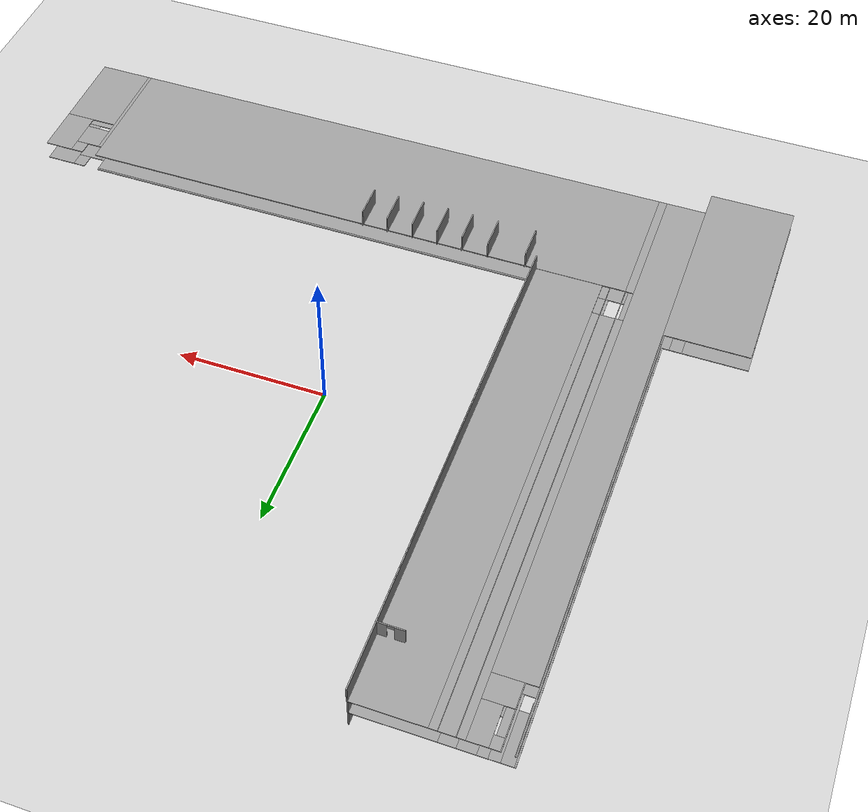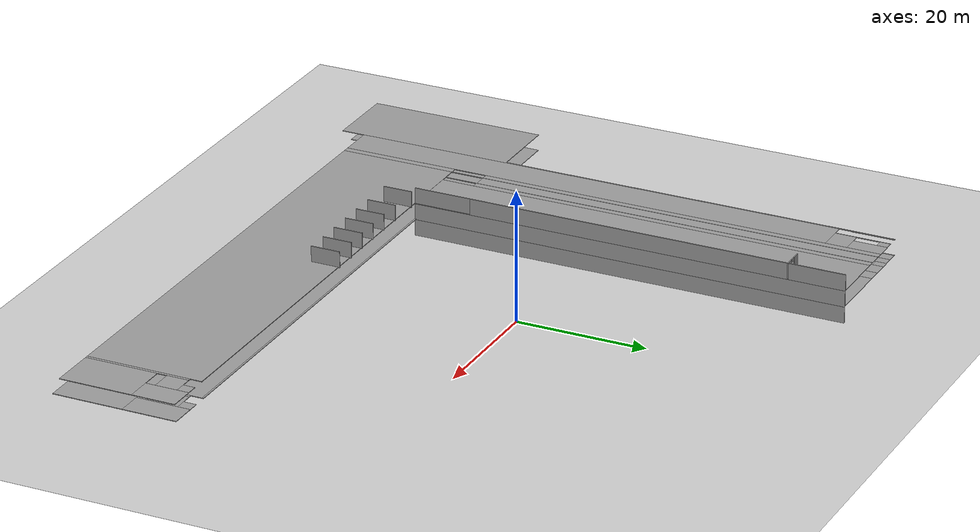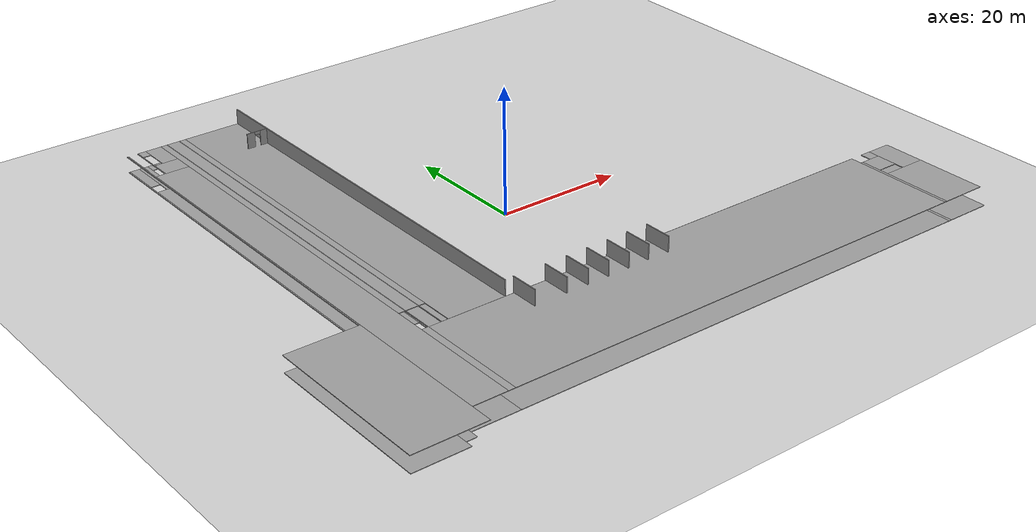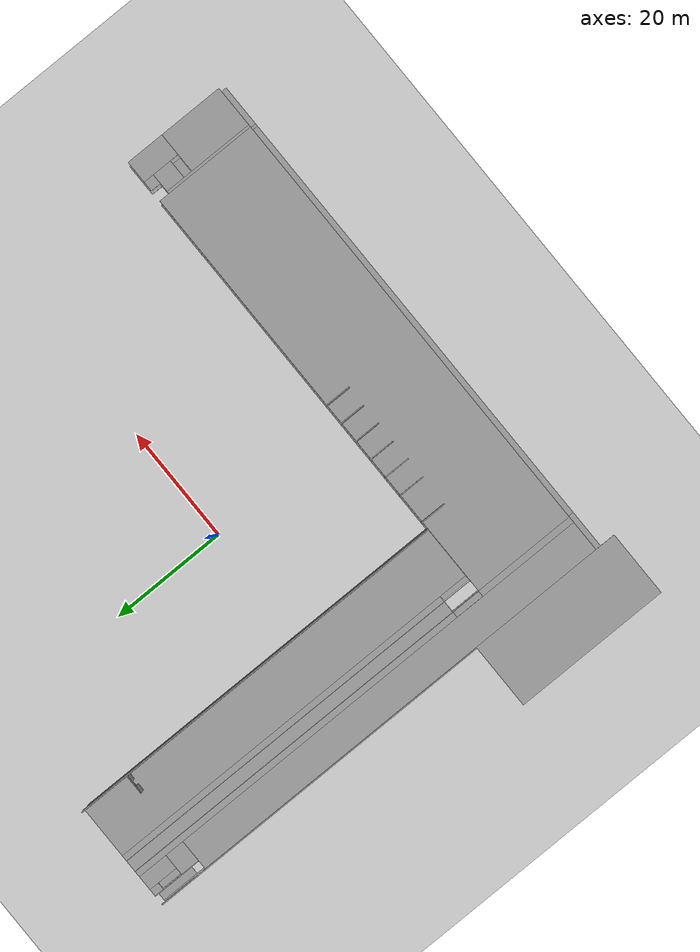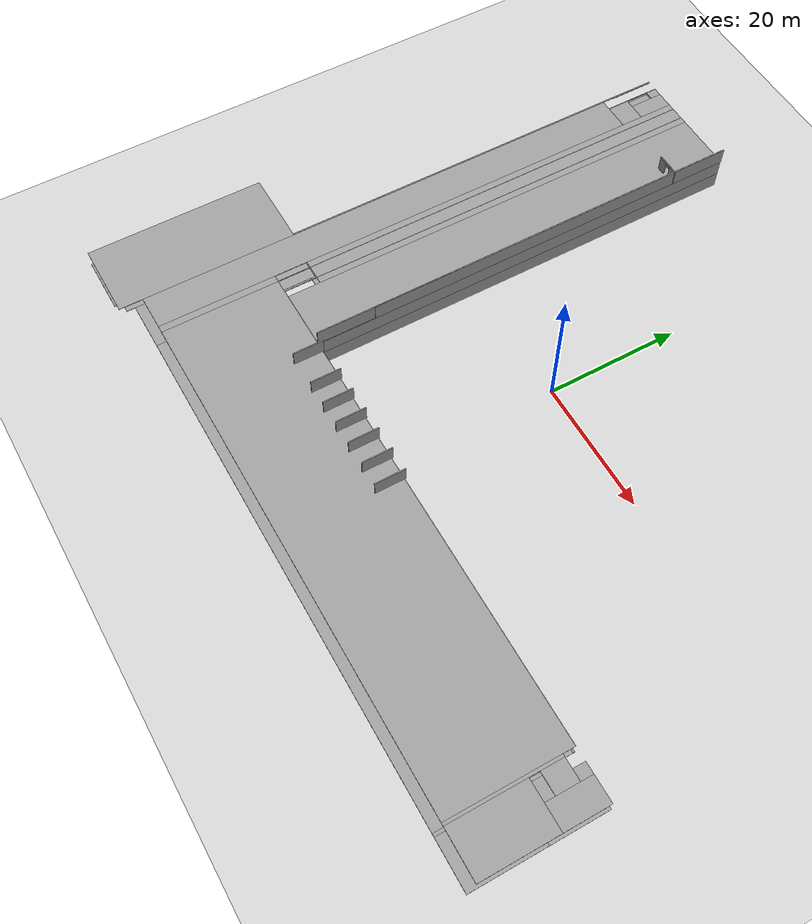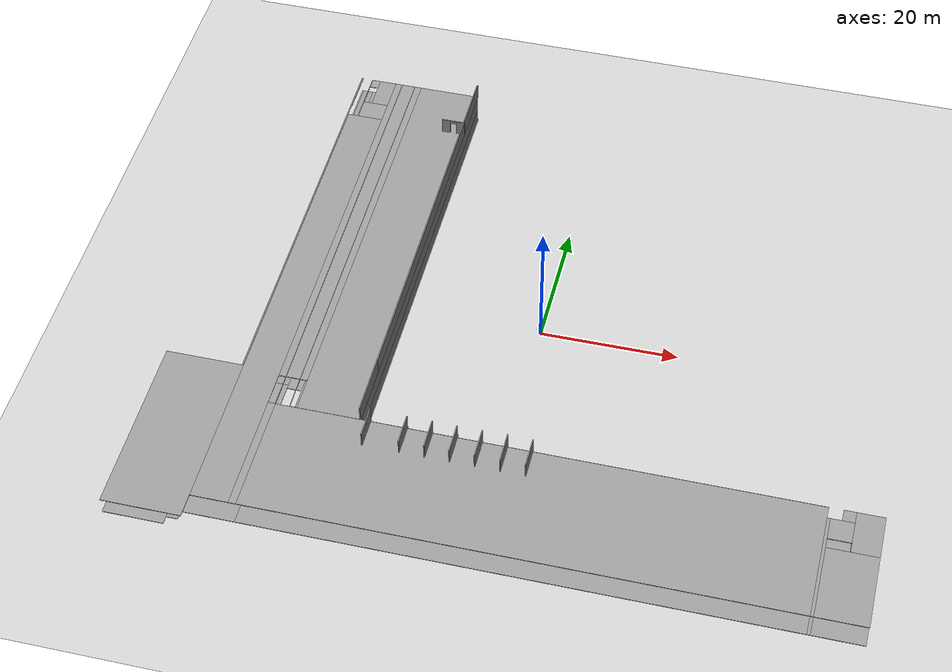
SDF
<sdf version="1.7">
 <world name="default">
  <model name="ground_plane">
   <static>1</static>
   <link name="link">
    <collision name="collision">
     <geometry><plane><normal>0 0 1</normal><size>100 100</size></plane></geometry>
     <surface><friction><ode><mu>100</mu><mu2>50</mu2></ode></friction></surface>
    </collision>
    <visual name="visual">
     <cast_shadows>0</cast_shadows>
     <geometry><plane><normal>0 0 1</normal><size>100 100</size></plane></geometry>
     <material>
      <script><uri>file://media/materials/scripts/gazebo.material</uri><name>Gazebo/Grey</name></script>
     </material>
    </visual>
   </link>
  </model>
  <model name="Anselm_Turmeda">
   <pose>-32.7988 -2.37459 0 0 -0 0</pose>
   <link name="Floor_0">
    <pose>34.1888 -0.281989 2.5 0 -0 0</pose>
    <visual name="Floor_0_Visual_0">
     <pose>-46.4179 -30.6951 0.05 0 -0 0</pose>
     <geometry><box><size>8.57416 26.8788 0.1</size></box></geometry>
     <material>
      <script><uri>file://media/materials/scripts/gazebo.material</uri><name>Gazebo/Grey</name></script>
      <ambient>1 1 1 1</ambient>
     </material>
     <meta><layer>1</layer></meta>
    </visual>
    <collision name="Floor_0_Collision_0">
     <geometry><box><size>8.57416 26.8788 0.1</size></box></geometry>
     <pose>-46.4179 -30.6951 0.05 0 -0 0</pose>
    </collision>
    <visual name="Floor_0_Visual_1">
     <pose>-41.3146 -30.1245 0.05 0 -0 0</pose>
     <geometry><box><size>1.63242 25.7376 0.1</size></box></geometry>
     <material>
      <script><uri>file://media/materials/scripts/gazebo.material</uri><name>Gazebo/Grey</name></script>
      <ambient>1 1 1 1</ambient>
     </material>
     <meta><layer>1</layer></meta>
    </visual>
    <collision name="Floor_0_Collision_1">
     <geometry><box><size>1.63242 25.7376 0.1</size></box></geometry>
     <pose>-41.3146 -30.1245 0.05 0 -0 0</pose>
    </collision>
    <visual name="Floor_0_Visual_2">
     <pose>-36.7863 -29.4872 0.05 0 -0 0</pose>
     <geometry><box><size>7.42416 24.4631 0.1</size></box></geometry>
     <material>
      <script><uri>file://media/materials/scripts/gazebo.material</uri><name>Gazebo/Grey</name></script>
      <ambient>1 1 1 1</ambient>
     </material>
     <meta><layer>1</layer></meta>
    </visual>
    <collision name="Floor_0_Collision_2">
     <geometry><box><size>7.42416 24.4631 0.1</size></box></geometry>
     <pose>-36.7863 -29.4872 0.05 0 -0 0</pose>
    </collision>
    <visual name="Floor_0_Visual_3">
     <pose>5.01954 -32.3325 0.05 0 -0 0</pose>
     <geometry><box><size>76.1876 18.7727 0.1</size></box></geometry>
     <material>
      <script><uri>file://media/materials/scripts/gazebo.material</uri><name>Gazebo/Grey</name></script>
      <ambient>1 1 1 1</ambient>
     </material>
     <meta><layer>1</layer></meta>
    </visual>
    <collision name="Floor_0_Collision_3">
     <geometry><box><size>76.1876 18.7727 0.1</size></box></geometry>
     <pose>5.01954 -32.3325 0.05 0 -0 0</pose>
    </collision>
    <visual name="Floor_0_Visual_4">
     <pose>43.3448 -33.1674 0.05 0 -0 0</pose>
     <geometry><box><size>0.46289 17.1028 0.1</size></box></geometry>
     <material>
      <script><uri>file://media/materials/scripts/gazebo.material</uri><name>Gazebo/Grey</name></script>
      <ambient>1 1 1 1</ambient>
     </material>
     <meta><layer>1</layer></meta>
    </visual>
    <collision name="Floor_0_Collision_4">
     <geometry><box><size>0.46289 17.1028 0.1</size></box></geometry>
     <pose>43.3448 -33.1674 0.05 0 -0 0</pose>
    </collision>
    <visual name="Floor_0_Visual_5">
     <pose>47.1406 -36.3459 0.05 0 -0 0</pose>
     <geometry><box><size>7.12878 10.7459 0.1</size></box></geometry>
     <material>
      <script><uri>file://media/materials/scripts/gazebo.material</uri><name>Gazebo/Grey</name></script>
      <ambient>1 1 1 1</ambient>
     </material>
     <meta><layer>1</layer></meta>
    </visual>
    <collision name="Floor_0_Collision_5">
     <geometry><box><size>7.12878 10.7459 0.1</size></box></geometry>
     <pose>47.1406 -36.3459 0.05 0 -0 0</pose>
    </collision>
    <visual name="Floor_0_Visual_6">
     <pose>48.7598 -26.8288 0.05 0 -0 0</pose>
     <geometry><box><size>3.89041 8.28829 0.1</size></box></geometry>
     <material>
      <script><uri>file://media/materials/scripts/gazebo.material</uri><name>Gazebo/Grey</name></script>
      <ambient>1 1 1 1</ambient>
     </material>
     <meta><layer>1</layer></meta>
    </visual>
    <collision name="Floor_0_Collision_6">
     <geometry><box><size>3.89041 8.28829 0.1</size></box></geometry>
     <pose>48.7598 -26.8288 0.05 0 -0 0</pose>
    </collision>
    <visual name="Floor_0_Visual_7">
     <pose>45.1954 -27.0574 0.05 0 -0 0</pose>
     <geometry><box><size>3.23837 4.88274 0.1</size></box></geometry>
     <material>
      <script><uri>file://media/materials/scripts/gazebo.material</uri><name>Gazebo/Grey</name></script>
      <ambient>1 1 1 1</ambient>
     </material>
     <meta><layer>1</layer></meta>
    </visual>
    <collision name="Floor_0_Collision_7">
     <geometry><box><size>3.23837 4.88274 0.1</size></box></geometry>
     <pose>45.1954 -27.0574 0.05 0 -0 0</pose>
    </collision>
    <visual name="Floor_0_Visual_8">
     <pose>45.9845 -23.6503 0.05 0 -0 0</pose>
     <geometry><box><size>1.66026 1.93134 0.1</size></box></geometry>
     <material>
      <script><uri>file://media/materials/scripts/gazebo.material</uri><name>Gazebo/Grey</name></script>
      <ambient>1 1 1 1</ambient>
     </material>
     <meta><layer>1</layer></meta>
    </visual>
    <collision name="Floor_0_Collision_8">
     <geometry><box><size>1.66026 1.93134 0.1</size></box></geometry>
     <pose>45.9845 -23.6503 0.05 0 -0 0</pose>
    </collision>
    <visual name="Floor_0_Visual_9">
     <pose>-25.9523 10.5942 0.05 0 -0 0</pose>
     <geometry><box><size>10.1181 67.0806 0.1</size></box></geometry>
     <material>
      <script><uri>file://media/materials/scripts/gazebo.material</uri><name>Gazebo/Grey</name></script>
      <ambient>1 1 1 1</ambient>
     </material>
     <meta><layer>1</layer></meta>
    </visual>
    <collision name="Floor_0_Collision_9">
     <geometry><box><size>10.1181 67.0806 0.1</size></box></geometry>
     <pose>-25.9523 10.5942 0.05 0 -0 0</pose>
    </collision>
    <visual name="Floor_0_Visual_10">
     <pose>11.11 -22.8154 0.05 0 -0 0</pose>
     <geometry><box><size>64.0066 0.261495 0.1</size></box></geometry>
     <material>
      <script><uri>file://media/materials/scripts/gazebo.material</uri><name>Gazebo/Grey</name></script>
      <ambient>1 1 1 1</ambient>
     </material>
     <meta><layer>1</layer></meta>
    </visual>
    <collision name="Floor_0_Collision_10">
     <geometry><box><size>64.0066 0.261495 0.1</size></box></geometry>
     <pose>11.11 -22.8154 0.05 0 -0 0</pose>
    </collision>
    <visual name="Floor_0_Visual_11">
     <pose>43.1133 -22.7743 0.05 0 -0 0</pose>
     <geometry><box><size>0 0.179344 0.1</size></box></geometry>
     <material>
      <script><uri>file://media/materials/scripts/gazebo.material</uri><name>Gazebo/Grey</name></script>
      <ambient>1 1 1 1</ambient>
     </material>
     <meta><layer>1</layer></meta>
    </visual>
    <collision name="Floor_0_Collision_11">
     <geometry><box><size>0 0.179344 0.1</size></box></geometry>
     <pose>43.1133 -22.7743 0.05 0 -0 0</pose>
    </collision>
    <visual name="Floor_0_Visual_12">
     <pose>-32.0428 13.1372 0.05 0 -0 0</pose>
     <geometry><box><size>2.06288 61.9945 0.1</size></box></geometry>
     <material>
      <script><uri>file://media/materials/scripts/gazebo.material</uri><name>Gazebo/Grey</name></script>
      <ambient>1 1 1 1</ambient>
     </material>
     <meta><layer>1</layer></meta>
    </visual>
    <collision name="Floor_0_Collision_12">
     <geometry><box><size>2.06288 61.9945 0.1</size></box></geometry>
     <pose>-32.0428 13.1372 0.05 0 -0 0</pose>
    </collision>
    <visual name="Floor_0_Visual_13">
     <pose>-39.5613 13.4394 0.05 0 -0 0</pose>
     <geometry><box><size>0.189446 61.3901 0.1</size></box></geometry>
     <material>
      <script><uri>file://media/materials/scripts/gazebo.material</uri><name>Gazebo/Grey</name></script>
      <ambient>1 1 1 1</ambient>
     </material>
     <meta><layer>1</layer></meta>
    </visual>
    <collision name="Floor_0_Collision_13">
     <geometry><box><size>0.189446 61.3901 0.1</size></box></geometry>
     <pose>-39.5613 13.4394 0.05 0 -0 0</pose>
    </collision>
    <visual name="Floor_0_Visual_14">
     <pose>-36.2704 9.2133 0.05 0 -0 0</pose>
     <geometry><box><size>6.39228 52.938 0.1</size></box></geometry>
     <material>
      <script><uri>file://media/materials/scripts/gazebo.material</uri><name>Gazebo/Grey</name></script>
      <ambient>1 1 1 1</ambient>
     </material>
     <meta><layer>1</layer></meta>
    </visual>
    <collision name="Floor_0_Collision_14">
     <geometry><box><size>6.39228 52.938 0.1</size></box></geometry>
     <pose>-36.2704 9.2133 0.05 0 -0 0</pose>
    </collision>
    <visual name="Floor_0_Visual_15">
     <pose>-37.2668 39.9084 0.05 0 -0 0</pose>
     <geometry><box><size>1.37349 8.45218 0.1</size></box></geometry>
     <material>
      <script><uri>file://media/materials/scripts/gazebo.material</uri><name>Gazebo/Grey</name></script>
      <ambient>1 1 1 1</ambient>
     </material>
     <meta><layer>1</layer></meta>
    </visual>
    <collision name="Floor_0_Collision_15">
     <geometry><box><size>1.37349 8.45218 0.1</size></box></geometry>
     <pose>-37.2668 39.9084 0.05 0 -0 0</pose>
    </collision>
    <visual name="Floor_0_Visual_16">
     <pose>-34.8271 37.3501 0.05 0 -0 0</pose>
     <geometry><box><size>3.50579 3.33567 0.1</size></box></geometry>
     <material>
      <script><uri>file://media/materials/scripts/gazebo.material</uri><name>Gazebo/Grey</name></script>
      <ambient>1 1 1 1</ambient>
     </material>
     <meta><layer>1</layer></meta>
    </visual>
    <collision name="Floor_0_Collision_16">
     <geometry><box><size>3.50579 3.33567 0.1</size></box></geometry>
     <pose>-34.8271 37.3501 0.05 0 -0 0</pose>
    </collision>
    <visual name="Floor_0_Visual_17">
     <pose>-38.71 40.8994 0.05 0 -0 0</pose>
     <geometry><box><size>1.513 6.47018 0.1</size></box></geometry>
     <material>
      <script><uri>file://media/materials/scripts/gazebo.material</uri><name>Gazebo/Grey</name></script>
      <ambient>1 1 1 1</ambient>
     </material>
     <meta><layer>1</layer></meta>
    </visual>
    <collision name="Floor_0_Collision_17">
     <geometry><box><size>1.513 6.47018 0.1</size></box></geometry>
     <pose>-38.71 40.8994 0.05 0 -0 0</pose>
    </collision>
    <visual name="Floor_0_Visual_18">
     <pose>-34.1989 41.5762 0.05 0 -0 0</pose>
     <geometry><box><size>2.2492 5.11651 0.1</size></box></geometry>
     <material>
      <script><uri>file://media/materials/scripts/gazebo.material</uri><name>Gazebo/Grey</name></script>
      <ambient>1 1 1 1</ambient>
     </material>
     <meta><layer>1</layer></meta>
    </visual>
    <collision name="Floor_0_Collision_18">
     <geometry><box><size>2.2492 5.11651 0.1</size></box></geometry>
     <pose>-34.1989 41.5762 0.05 0 -0 0</pose>
    </collision>
    <visual name="Floor_0_Visual_19">
     <pose>-35.9518 43.3262 0.05 0 -0 0</pose>
     <geometry><box><size>1.25659 1.61651 0.1</size></box></geometry>
     <material>
      <script><uri>file://media/materials/scripts/gazebo.material</uri><name>Gazebo/Grey</name></script>
      <ambient>1 1 1 1</ambient>
     </material>
     <meta><layer>1</layer></meta>
    </visual>
    <collision name="Floor_0_Collision_19">
     <geometry><box><size>1.25659 1.61651 0.1</size></box></geometry>
     <pose>-35.9518 43.3262 0.05 0 -0 0</pose>
    </collision>
   </link>
   <link name="Floor_1">
    <pose>34.1888 -0.261702 5 0 -0 0</pose>
    <visual name="Floor_1_Visual_0">
     <pose>-45.0604 -30.6956 0.05 0 -0 0</pose>
     <geometry><box><size>11.2893 26.9183 0.1</size></box></geometry>
     <material>
      <script><uri>file://media/materials/scripts/gazebo.material</uri><name>Gazebo/Grey</name></script>
      <ambient>1 1 1 1</ambient>
     </material>
     <meta><layer>2</layer></meta>
    </visual>
    <collision name="Floor_1_Collision_0">
     <geometry><box><size>11.2893 26.9183 0.1</size></box></geometry>
     <pose>-45.0604 -30.6956 0.05 0 -0 0</pose>
    </collision>
    <visual name="Floor_1_Visual_1">
     <pose>-36.7543 -2.46547 0.05 0 -0 0</pose>
     <geometry><box><size>5.32296 76.2977 0.1</size></box></geometry>
     <material>
      <script><uri>file://media/materials/scripts/gazebo.material</uri><name>Gazebo/Grey</name></script>
      <ambient>1 1 1 1</ambient>
     </material>
     <meta><layer>2</layer></meta>
    </visual>
    <collision name="Floor_1_Collision_1">
     <geometry><box><size>5.32296 76.2977 0.1</size></box></geometry>
     <pose>-36.7543 -2.46547 0.05 0 -0 0</pose>
    </collision>
    <visual name="Floor_1_Visual_2">
     <pose>-33.5567 -31.7526 0.05 0 -0 0</pose>
     <geometry><box><size>1.07211 17.7234 0.1</size></box></geometry>
     <material>
      <script><uri>file://media/materials/scripts/gazebo.material</uri><name>Gazebo/Grey</name></script>
      <ambient>1 1 1 1</ambient>
     </material>
     <meta><layer>2</layer></meta>
    </visual>
    <collision name="Floor_1_Collision_2">
     <geometry><box><size>1.07211 17.7234 0.1</size></box></geometry>
     <pose>-33.5567 -31.7526 0.05 0 -0 0</pose>
    </collision>
    <visual name="Floor_1_Visual_3">
     <pose>5.05568 -31.7614 0.05 0 -0 0</pose>
     <geometry><box><size>76.1527 17.7058 0.1</size></box></geometry>
     <material>
      <script><uri>file://media/materials/scripts/gazebo.material</uri><name>Gazebo/Grey</name></script>
      <ambient>1 1 1 1</ambient>
     </material>
     <meta><layer>2</layer></meta>
    </visual>
    <collision name="Floor_1_Collision_3">
     <geometry><box><size>76.1527 17.7058 0.1</size></box></geometry>
     <pose>5.05568 -31.7614 0.05 0 -0 0</pose>
    </collision>
    <visual name="Floor_1_Visual_4">
     <pose>43.3516 -32.6347 0.05 0 -0 0</pose>
     <geometry><box><size>0.439225 15.9593 0.1</size></box></geometry>
     <material>
      <script><uri>file://media/materials/scripts/gazebo.material</uri><name>Gazebo/Grey</name></script>
      <ambient>1 1 1 1</ambient>
     </material>
     <meta><layer>2</layer></meta>
    </visual>
    <collision name="Floor_1_Collision_4">
     <geometry><box><size>0.439225 15.9593 0.1</size></box></geometry>
     <pose>43.3516 -32.6347 0.05 0 -0 0</pose>
    </collision>
    <visual name="Floor_1_Visual_5">
     <pose>47.1381 -35.048 0.05 0 -0 0</pose>
     <geometry><box><size>7.13374 11.1326 0.1</size></box></geometry>
     <material>
      <script><uri>file://media/materials/scripts/gazebo.material</uri><name>Gazebo/Grey</name></script>
      <ambient>1 1 1 1</ambient>
     </material>
     <meta><layer>2</layer></meta>
    </visual>
    <collision name="Floor_1_Collision_5">
     <geometry><box><size>7.13374 11.1326 0.1</size></box></geometry>
     <pose>47.1381 -35.048 0.05 0 -0 0</pose>
    </collision>
    <visual name="Floor_1_Visual_6">
     <pose>48.7681 -26.1772 0.05 0 -0 0</pose>
     <geometry><box><size>3.87375 6.6092 0.1</size></box></geometry>
     <material>
      <script><uri>file://media/materials/scripts/gazebo.material</uri><name>Gazebo/Grey</name></script>
      <ambient>1 1 1 1</ambient>
     </material>
     <meta><layer>2</layer></meta>
    </visual>
    <collision name="Floor_1_Collision_6">
     <geometry><box><size>3.87375 6.6092 0.1</size></box></geometry>
     <pose>48.7681 -26.1772 0.05 0 -0 0</pose>
    </collision>
    <visual name="Floor_1_Visual_7">
     <pose>45.2013 -26.3263 0.05 0 -0 0</pose>
     <geometry><box><size>3.25999 3.34256 0.1</size></box></geometry>
     <material>
      <script><uri>file://media/materials/scripts/gazebo.material</uri><name>Gazebo/Grey</name></script>
      <ambient>1 1 1 1</ambient>
     </material>
     <meta><layer>2</layer></meta>
    </visual>
    <collision name="Floor_1_Collision_7">
     <geometry><box><size>3.25999 3.34256 0.1</size></box></geometry>
     <pose>45.2013 -26.3263 0.05 0 -0 0</pose>
    </collision>
    <visual name="Floor_1_Visual_8">
     <pose>45.9741 -23.7638 0.05 0 -0 0</pose>
     <geometry><box><size>1.71422 1.78242 0.1</size></box></geometry>
     <material>
      <script><uri>file://media/materials/scripts/gazebo.material</uri><name>Gazebo/Grey</name></script>
      <ambient>1 1 1 1</ambient>
     </material>
     <meta><layer>2</layer></meta>
    </visual>
    <collision name="Floor_1_Collision_8">
     <geometry><box><size>1.71422 1.78242 0.1</size></box></geometry>
     <pose>45.9741 -23.7638 0.05 0 -0 0</pose>
    </collision>
    <visual name="Floor_1_Visual_9">
     <pose>-31.0167 10.6231 0.05 0 -0 0</pose>
     <geometry><box><size>0.0592 67.0632 0.1</size></box></geometry>
     <material>
      <script><uri>file://media/materials/scripts/gazebo.material</uri><name>Gazebo/Grey</name></script>
      <ambient>1 1 1 1</ambient>
     </material>
     <meta><layer>2</layer></meta>
    </visual>
    <collision name="Floor_1_Collision_9">
     <geometry><box><size>0.0592 67.0632 0.1</size></box></geometry>
     <pose>-31.0167 10.6231 0.05 0 -0 0</pose>
    </collision>
    <visual name="Floor_1_Visual_10">
     <pose>-25.9239 -22.8903 0.05 0 -0 0</pose>
     <geometry><box><size>10.1262 0.036364 0.1</size></box></geometry>
     <material>
      <script><uri>file://media/materials/scripts/gazebo.material</uri><name>Gazebo/Grey</name></script>
      <ambient>1 1 1 1</ambient>
     </material>
     <meta><layer>2</layer></meta>
    </visual>
    <collision name="Floor_1_Collision_10">
     <geometry><box><size>10.1262 0.036364 0.1</size></box></geometry>
     <pose>-25.9239 -22.8903 0.05 0 -0 0</pose>
    </collision>
    <visual name="Floor_1_Visual_11">
     <pose>11.1356 -22.8905 0.05 0 -0 0</pose>
     <geometry><box><size>63.9929 0.035911 0.1</size></box></geometry>
     <material>
      <script><uri>file://media/materials/scripts/gazebo.material</uri><name>Gazebo/Grey</name></script>
      <ambient>1 1 1 1</ambient>
     </material>
     <meta><layer>2</layer></meta>
    </visual>
    <collision name="Floor_1_Collision_11">
     <geometry><box><size>63.9929 0.035911 0.1</size></box></geometry>
     <pose>11.1356 -22.8905 0.05 0 -0 0</pose>
    </collision>
    <visual name="Floor_1_Visual_12">
     <pose>-33.0567 10.6319 0.05 0 -0 0</pose>
     <geometry><box><size>0.072115 67.0457 0.1</size></box></geometry>
     <material>
      <script><uri>file://media/materials/scripts/gazebo.material</uri><name>Gazebo/Grey</name></script>
      <ambient>1 1 1 1</ambient>
     </material>
     <meta><layer>2</layer></meta>
    </visual>
    <collision name="Floor_1_Collision_12">
     <geometry><box><size>0.072115 67.0457 0.1</size></box></geometry>
     <pose>-33.0567 10.6319 0.05 0 -0 0</pose>
    </collision>
    <visual name="Floor_1_Visual_13">
     <pose>-25.4239 10.6413 0.05 0 -0 0</pose>
     <geometry><box><size>9.12623 67.0269 0.1</size></box></geometry>
     <material>
      <script><uri>file://media/materials/scripts/gazebo.material</uri><name>Gazebo/Grey</name></script>
      <ambient>1 1 1 1</ambient>
     </material>
     <meta><layer>2</layer></meta>
    </visual>
    <collision name="Floor_1_Collision_13">
     <geometry><box><size>9.12623 67.0269 0.1</size></box></geometry>
     <pose>-25.4239 10.6413 0.05 0 -0 0</pose>
    </collision>
    <visual name="Floor_1_Visual_14">
     <pose>-25.4239 10.6413 0.05 0 -0 0</pose>
     <geometry><box><size>9.12623 67.0269 0.1</size></box></geometry>
     <material>
      <script><uri>file://media/materials/scripts/gazebo.material</uri><name>Gazebo/Grey</name></script>
      <ambient>1 1 1 1</ambient>
     </material>
     <meta><layer>2</layer></meta>
    </visual>
    <collision name="Floor_1_Collision_14">
     <geometry><box><size>9.12623 67.0269 0.1</size></box></geometry>
     <pose>-25.4239 10.6413 0.05 0 -0 0</pose>
    </collision>
    <visual name="Floor_1_Visual_15">
     <pose>-33.5928 13.1341 0.05 0 -0 0</pose>
     <geometry><box><size>1 62.0413 0.1</size></box></geometry>
     <material>
      <script><uri>file://media/materials/scripts/gazebo.material</uri><name>Gazebo/Grey</name></script>
      <ambient>1 1 1 1</ambient>
     </material>
     <meta><layer>2</layer></meta>
    </visual>
    <collision name="Floor_1_Collision_15">
     <geometry><box><size>1 62.0413 0.1</size></box></geometry>
     <pose>-33.5928 13.1341 0.05 0 -0 0</pose>
    </collision>
    <visual name="Floor_1_Visual_16">
     <pose>-30.4871 13.1341 0.05 0 -0 0</pose>
     <geometry><box><size>1 62.0413 0.1</size></box></geometry>
     <material>
      <script><uri>file://media/materials/scripts/gazebo.material</uri><name>Gazebo/Grey</name></script>
      <ambient>1 1 1 1</ambient>
     </material>
     <meta><layer>2</layer></meta>
    </visual>
    <collision name="Floor_1_Collision_16">
     <geometry><box><size>1 62.0413 0.1</size></box></geometry>
     <pose>-30.4871 13.1341 0.05 0 -0 0</pose>
    </collision>
    <visual name="Floor_1_Visual_17">
     <pose>-32.0335 13.1399 0.05 0 -0 0</pose>
     <geometry><box><size>1.97442 62.0298 0.1</size></box></geometry>
     <material>
      <script><uri>file://media/materials/scripts/gazebo.material</uri><name>Gazebo/Grey</name></script>
      <ambient>1 1 1 1</ambient>
     </material>
     <meta><layer>2</layer></meta>
    </visual>
    <collision name="Floor_1_Collision_17">
     <geometry><box><size>1.97442 62.0298 0.1</size></box></geometry>
     <pose>-32.0335 13.1399 0.05 0 -0 0</pose>
    </collision>
    <visual name="Floor_1_Visual_18">
     <pose>-39.5689 13.4591 0.05 0 -0 0</pose>
     <geometry><box><size>0.16128 61.3912 0.1</size></box></geometry>
     <material>
      <script><uri>file://media/materials/scripts/gazebo.material</uri><name>Gazebo/Grey</name></script>
      <ambient>1 1 1 1</ambient>
     </material>
     <meta><layer>2</layer></meta>
    </visual>
    <collision name="Floor_1_Collision_18">
     <geometry><box><size>0.16128 61.3912 0.1</size></box></geometry>
     <pose>-39.5689 13.4591 0.05 0 -0 0</pose>
    </collision>
    <visual name="Floor_1_Visual_19">
     <pose>-39.452 9.22345 0.05 0 -0 0</pose>
     <geometry><box><size>0.072485 52.9199 0.1</size></box></geometry>
     <material>
      <script><uri>file://media/materials/scripts/gazebo.material</uri><name>Gazebo/Grey</name></script>
      <ambient>1 1 1 1</ambient>
     </material>
     <meta><layer>2</layer></meta>
    </visual>
    <collision name="Floor_1_Collision_19">
     <geometry><box><size>0.072485 52.9199 0.1</size></box></geometry>
     <pose>-39.452 9.22345 0.05 0 -0 0</pose>
    </collision>
    <visual name="Floor_1_Visual_20">
     <pose>-37.8974 39.9191 0.05 0 -0 0</pose>
     <geometry><box><size>0.111645 8.47137 0.1</size></box></geometry>
     <material>
      <script><uri>file://media/materials/scripts/gazebo.material</uri><name>Gazebo/Grey</name></script>
      <ambient>1 1 1 1</ambient>
     </material>
     <meta><layer>2</layer></meta>
    </visual>
    <collision name="Floor_1_Collision_20">
     <geometry><box><size>0.111645 8.47137 0.1</size></box></geometry>
     <pose>-37.8974 39.9191 0.05 0 -0 0</pose>
    </collision>
    <visual name="Floor_1_Visual_21">
     <pose>-35.9672 37.3405 0.05 0 -0 0</pose>
     <geometry><box><size>3.7488 3.31428 0.1</size></box></geometry>
     <material>
      <script><uri>file://media/materials/scripts/gazebo.material</uri><name>Gazebo/Grey</name></script>
      <ambient>1 1 1 1</ambient>
     </material>
     <meta><layer>2</layer></meta>
    </visual>
    <collision name="Floor_1_Collision_21">
     <geometry><box><size>3.7488 3.31428 0.1</size></box></geometry>
     <pose>-35.9672 37.3405 0.05 0 -0 0</pose>
    </collision>
    <visual name="Floor_1_Visual_22">
     <pose>-39.452 40.9101 0.05 0 -0 0</pose>
     <geometry><box><size>0.072485 6.48937 0.1</size></box></geometry>
     <material>
      <script><uri>file://media/materials/scripts/gazebo.material</uri><name>Gazebo/Grey</name></script>
      <ambient>1 1 1 1</ambient>
     </material>
     <meta><layer>2</layer></meta>
    </visual>
    <collision name="Floor_1_Collision_22">
     <geometry><box><size>0.072485 6.48937 0.1</size></box></geometry>
     <pose>-39.452 40.9101 0.05 0 -0 0</pose>
    </collision>
    <visual name="Floor_1_Visual_23">
     <pose>-35.3496 41.5762 0.05 0 -0 0</pose>
     <geometry><box><size>2.5136 5.15709 0.1</size></box></geometry>
     <material>
      <script><uri>file://media/materials/scripts/gazebo.material</uri><name>Gazebo/Grey</name></script>
      <ambient>1 1 1 1</ambient>
     </material>
     <meta><layer>2</layer></meta>
    </visual>
    <collision name="Floor_1_Collision_23">
     <geometry><box><size>2.5136 5.15709 0.1</size></box></geometry>
     <pose>-35.3496 41.5762 0.05 0 -0 0</pose>
    </collision>
    <visual name="Floor_1_Visual_24">
     <pose>-37.224 43.3369 0.05 0 -0 0</pose>
     <geometry><box><size>1.2352 1.6357 0.1</size></box></geometry>
     <material>
      <script><uri>file://media/materials/scripts/gazebo.material</uri><name>Gazebo/Grey</name></script>
      <ambient>1 1 1 1</ambient>
     </material>
     <meta><layer>2</layer></meta>
    </visual>
    <collision name="Floor_1_Collision_24">
     <geometry><box><size>1.2352 1.6357 0.1</size></box></geometry>
     <pose>-37.224 43.3369 0.05 0 -0 0</pose>
    </collision>
   </link>
   <link name="Wall_129">
    <collision name="Wall_129_Collision">
     <geometry><box><size>58.2 0.15 2.5</size></box></geometry>
     <pose>0 0 1.25 0 -0 0</pose>
    </collision>
    <visual name="Wall_129_Visual">
     <pose>0 0 1.25 0 -0 0</pose>
     <geometry><box><size>58.2 0.15 2.5</size></box></geometry>
     <material>
      <script><uri>file://media/materials/scripts/gazebo.material</uri><name>Gazebo/Grey</name></script>
      <ambient>1 1 1 1</ambient>
     </material>
     <meta><layer>2</layer></meta>
    </visual>
    <pose>13.2576 14.7931 5 0 -0 1.5708</pose>
   </link>
   <link name="Wall_177">
    <collision name="Wall_177_Collision">
     <geometry><box><size>4.5 0.15 2.5</size></box></geometry>
     <pose>0 0 1.25 0 -0 0</pose>
    </collision>
    <visual name="Wall_177_Visual">
     <pose>0 0 1.25 0 -0 0</pose>
     <geometry><box><size>4.5 0.15 2.5</size></box></geometry>
     <material>
      <script><uri>file://media/materials/scripts/gazebo.material</uri><name>Gazebo/Grey</name></script>
      <ambient>1 1 1 1</ambient>
     </material>
     <meta><layer>2</layer></meta>
    </visual>
    <pose>14.6714 -25.2218 5 0 -0 -1.5708</pose>
   </link>
   <link name="Wall_179">
    <collision name="Wall_179_Collision">
     <geometry><box><size>4.5 0.15 2.5</size></box></geometry>
     <pose>0 0 1.25 0 -0 0</pose>
    </collision>
    <visual name="Wall_179_Visual">
     <pose>0 0 1.25 0 -0 0</pose>
     <geometry><box><size>4.5 0.15 2.5</size></box></geometry>
     <material>
      <script><uri>file://media/materials/scripts/gazebo.material</uri><name>Gazebo/Grey</name></script>
      <ambient>1 1 1 1</ambient>
     </material>
     <meta><layer>2</layer></meta>
    </visual>
    <pose>19.8398 -25.2465 5 0 -0 -1.5708</pose>
   </link>
   <link name="Wall_181">
    <collision name="Wall_181_Collision">
     <geometry><box><size>4.5 0.15 2.5</size></box></geometry>
     <pose>0 0 1.25 0 -0 0</pose>
    </collision>
    <visual name="Wall_181_Visual">
     <pose>0 0 1.25 0 -0 0</pose>
     <geometry><box><size>4.5 0.15 2.5</size></box></geometry>
     <material>
      <script><uri>file://media/materials/scripts/gazebo.material</uri><name>Gazebo/Grey</name></script>
      <ambient>1 1 1 1</ambient>
     </material>
     <meta><layer>2</layer></meta>
    </visual>
    <pose>23.3761 -25.2713 5 0 -0 -1.5708</pose>
   </link>
   <link name="Wall_183">
    <collision name="Wall_183_Collision">
     <geometry><box><size>4.5 0.15 2.5</size></box></geometry>
     <pose>0 0 1.25 0 -0 0</pose>
    </collision>
    <visual name="Wall_183_Visual">
     <pose>0 0 1.25 0 -0 0</pose>
     <geometry><box><size>4.5 0.15 2.5</size></box></geometry>
     <material>
      <script><uri>file://media/materials/scripts/gazebo.material</uri><name>Gazebo/Grey</name></script>
      <ambient>1 1 1 1</ambient>
     </material>
     <meta><layer>2</layer></meta>
    </visual>
    <pose>26.8381 -25.2465 5 0 -0 -1.5708</pose>
   </link>
   <link name="Wall_185">
    <collision name="Wall_185_Collision">
     <geometry><box><size>4.5 0.15 2.5</size></box></geometry>
     <pose>0 0 1.25 0 -0 0</pose>
    </collision>
    <visual name="Wall_185_Visual">
     <pose>0 0 1.25 0 -0 0</pose>
     <geometry><box><size>4.5 0.15 2.5</size></box></geometry>
     <material>
      <script><uri>file://media/materials/scripts/gazebo.material</uri><name>Gazebo/Grey</name></script>
      <ambient>1 1 1 1</ambient>
     </material>
     <meta><layer>2</layer></meta>
    </visual>
    <pose>30.3249 -25.2465 5 0 -0 -1.5708</pose>
   </link>
   <link name="Wall_187">
    <collision name="Wall_187_Collision">
     <geometry><box><size>4.5 0.15 2.5</size></box></geometry>
     <pose>0 0 1.25 0 -0 0</pose>
    </collision>
    <visual name="Wall_187_Visual">
     <pose>0 0 1.25 0 -0 0</pose>
     <geometry><box><size>4.5 0.15 2.5</size></box></geometry>
     <material>
      <script><uri>file://media/materials/scripts/gazebo.material</uri><name>Gazebo/Grey</name></script>
      <ambient>1 1 1 1</ambient>
     </material>
     <meta><layer>2</layer></meta>
    </visual>
    <pose>33.8117 -25.1723 5 0 -0 -1.5708</pose>
   </link>
   <link name="Wall_189">
    <collision name="Wall_189_Collision">
     <geometry><box><size>4.5 0.15 2.5</size></box></geometry>
     <pose>0 0 1.25 0 -0 0</pose>
    </collision>
    <visual name="Wall_189_Visual">
     <pose>0 0 1.25 0 -0 0</pose>
     <geometry><box><size>4.5 0.15 2.5</size></box></geometry>
     <material>
      <script><uri>file://media/materials/scripts/gazebo.material</uri><name>Gazebo/Grey</name></script>
      <ambient>1 1 1 1</ambient>
     </material>
     <meta><layer>2</layer></meta>
    </visual>
    <pose>37.2985 -25.2218 5 0 -0 -1.5708</pose>
   </link>
   <link name="Wall_33">
    <collision name="Wall_33_Collision">
     <geometry><box><size>67 0.15 2.5</size></box></geometry>
     <pose>0 0 1.25 0 -0 0</pose>
    </collision>
    <visual name="Wall_33_Visual">
     <pose>0 0 1.25 0 -0 0</pose>
     <geometry><box><size>67 0.15 2.5</size></box></geometry>
     <material>
      <script><uri>file://media/materials/scripts/gazebo.material</uri><name>Gazebo/Grey</name></script>
      <ambient>1 1 1 1</ambient>
     </material>
     <meta><layer>1</layer></meta>
    </visual>
    <pose>13.2237 10.3525 2.5 0 -0 1.5708</pose>
   </link>
   <link name="Wall_360">
    <pose>11.6059 35.1474 5 0 -0 0</pose>
    <visual name="Wall_360_Visual_0">
     <pose>-1.10825 0 1.25 0 -0 0</pose>
     <geometry><box><size>1.28349 0.15 2.5</size></box></geometry>
     <material>
      <script><uri>file://media/materials/scripts/gazebo.material</uri><name>Gazebo/Grey</name></script>
      <ambient>1 1 1 1</ambient>
     </material>
     <meta><layer>2</layer></meta>
    </visual>
    <collision name="Wall_360_Collision_0">
     <geometry><box><size>1.28349 0.15 2.5</size></box></geometry>
     <pose>-1.10825 0 1.25 0 -0 0</pose>
    </collision>
    <visual name="Wall_360_Visual_1">
     <pose>1.09175 0 1.25 0 -0 0</pose>
     <geometry><box><size>1.31651 0.15 2.5</size></box></geometry>
     <material>
      <script><uri>file://media/materials/scripts/gazebo.material</uri><name>Gazebo/Grey</name></script>
      <ambient>1 1 1 1</ambient>
     </material>
     <meta><layer>2</layer></meta>
    </visual>
    <collision name="Wall_360_Collision_1">
     <geometry><box><size>1.31651 0.15 2.5</size></box></geometry>
     <pose>1.09175 0 1.25 0 -0 0</pose>
    </collision>
    <visual name="Wall_360_Visual_2">
     <pose>-0.016508 0 2.25 0 -0 0</pose>
     <geometry><box><size>0.9 0.15 0.5</size></box></geometry>
     <material>
      <script><uri>file://media/materials/scripts/gazebo.material</uri><name>Gazebo/Grey</name></script>
      <ambient>1 1 1 1</ambient>
     </material>
     <meta><layer>2</layer></meta>
    </visual>
    <collision name="Wall_360_Collision_2">
     <geometry><box><size>0.9 0.15 0.5</size></box></geometry>
     <pose>-0.016508 0 2.25 0 -0 0</pose>
    </collision>
   </link>
   <link name="Wall_410">
    <collision name="Wall_410_Collision">
     <geometry><box><size>1.25 0.15 2.5</size></box></geometry>
     <pose>0 0 1.25 0 -0 0</pose>
    </collision>
    <visual name="Wall_410_Visual">
     <pose>0 0 1.25 0 -0 0</pose>
     <geometry><box><size>1.25 0.15 2.5</size></box></geometry>
     <material>
      <script><uri>file://media/materials/scripts/gazebo.material</uri><name>Gazebo/Grey</name></script>
      <ambient>1 1 1 1</ambient>
     </material>
     <meta><layer>0</layer></meta>
    </visual>
    <pose>15.02 -27.1328 0 0 -0 1.5708</pose>
   </link>
   <link name="Wall_411">
    <pose>35.82 -26.5828 0 0 -0 0</pose>
    <visual name="Wall_411_Visual_0">
     <pose>-14.1095 0 1.25 0 -0 0</pose>
     <geometry><box><size>13.531 0.15 2.5</size></box></geometry>
     <material>
      <script><uri>file://media/materials/scripts/gazebo.material</uri><name>Gazebo/Grey</name></script>
      <ambient>1 1 1 1</ambient>
     </material>
     <meta><layer>0</layer></meta>
    </visual>
    <collision name="Wall_411_Collision_0">
     <geometry><box><size>13.531 0.15 2.5</size></box></geometry>
     <pose>-14.1095 0 1.25 0 -0 0</pose>
    </collision>
    <visual name="Wall_411_Visual_1">
     <pose>-1.22762 0 1.25 0 -0 0</pose>
     <geometry><box><size>8.57458 0.15 2.5</size></box></geometry>
     <material>
      <script><uri>file://media/materials/scripts/gazebo.material</uri><name>Gazebo/Grey</name></script>
      <ambient>1 1 1 1</ambient>
     </material>
     <meta><layer>0</layer></meta>
    </visual>
    <collision name="Wall_411_Collision_1">
     <geometry><box><size>8.57458 0.15 2.5</size></box></geometry>
     <pose>-1.22762 0 1.25 0 -0 0</pose>
    </collision>
    <visual name="Wall_411_Visual_2">
     <pose>9.04161 0 1.25 0 -0 0</pose>
     <geometry><box><size>8.40343 0.15 2.5</size></box></geometry>
     <material>
      <script><uri>file://media/materials/scripts/gazebo.material</uri><name>Gazebo/Grey</name></script>
      <ambient>1 1 1 1</ambient>
     </material>
     <meta><layer>0</layer></meta>
    </visual>
    <collision name="Wall_411_Collision_2">
     <geometry><box><size>8.40343 0.15 2.5</size></box></geometry>
     <pose>9.04161 0 1.25 0 -0 0</pose>
    </collision>
    <visual name="Wall_411_Visual_3">
     <pose>16.1873 0 1.25 0 -0 0</pose>
     <geometry><box><size>2.08297 0.15 2.5</size></box></geometry>
     <material>
      <script><uri>file://media/materials/scripts/gazebo.material</uri><name>Gazebo/Grey</name></script>
      <ambient>1 1 1 1</ambient>
     </material>
     <meta><layer>0</layer></meta>
    </visual>
    <collision name="Wall_411_Collision_3">
     <geometry><box><size>2.08297 0.15 2.5</size></box></geometry>
     <pose>16.1873 0 1.25 0 -0 0</pose>
    </collision>
    <visual name="Wall_411_Visual_4">
     <pose>19.8075 0 1.25 0 -0 0</pose>
     <geometry><box><size>2.13498 0.15 2.5</size></box></geometry>
     <material>
      <script><uri>file://media/materials/scripts/gazebo.material</uri><name>Gazebo/Grey</name></script>
      <ambient>1 1 1 1</ambient>
     </material>
     <meta><layer>0</layer></meta>
    </visual>
    <collision name="Wall_411_Collision_4">
     <geometry><box><size>2.13498 0.15 2.5</size></box></geometry>
     <pose>19.8075 0 1.25 0 -0 0</pose>
    </collision>
    <visual name="Wall_411_Visual_5">
     <pose>-6.42947 0 2.25 0 -0 0</pose>
     <geometry><box><size>1.82912 0.15 0.5</size></box></geometry>
     <material>
      <script><uri>file://media/materials/scripts/gazebo.material</uri><name>Gazebo/Grey</name></script>
      <ambient>1 1 1 1</ambient>
     </material>
     <meta><layer>0</layer></meta>
    </visual>
    <collision name="Wall_411_Collision_5">
     <geometry><box><size>1.82912 0.15 0.5</size></box></geometry>
     <pose>-6.42947 0 2.25 0 -0 0</pose>
    </collision>
    <visual name="Wall_411_Visual_6">
     <pose>3.94978 0 2.25 0 -0 0</pose>
     <geometry><box><size>1.78022 0.15 0.5</size></box></geometry>
     <material>
      <script><uri>file://media/materials/scripts/gazebo.material</uri><name>Gazebo/Grey</name></script>
      <ambient>1 1 1 1</ambient>
     </material>
     <meta><layer>0</layer></meta>
    </visual>
    <collision name="Wall_411_Collision_6">
     <geometry><box><size>1.78022 0.15 0.5</size></box></geometry>
     <pose>3.94978 0 2.25 0 -0 0</pose>
    </collision>
    <visual name="Wall_411_Visual_7">
     <pose>14.1946 0 2.25 0 -0 0</pose>
     <geometry><box><size>1.90247 0.15 0.5</size></box></geometry>
     <material>
      <script><uri>file://media/materials/scripts/gazebo.material</uri><name>Gazebo/Grey</name></script>
      <ambient>1 1 1 1</ambient>
     </material>
     <meta><layer>0</layer></meta>
    </visual>
    <collision name="Wall_411_Collision_7">
     <geometry><box><size>1.90247 0.15 0.5</size></box></geometry>
     <pose>14.1946 0 2.25 0 -0 0</pose>
    </collision>
    <visual name="Wall_411_Visual_8">
     <pose>17.9844 0 2.25 0 -0 0</pose>
     <geometry><box><size>1.51126 0.15 0.5</size></box></geometry>
     <material>
      <script><uri>file://media/materials/scripts/gazebo.material</uri><name>Gazebo/Grey</name></script>
      <ambient>1 1 1 1</ambient>
     </material>
     <meta><layer>0</layer></meta>
    </visual>
    <collision name="Wall_411_Collision_8">
     <geometry><box><size>1.51126 0.15 0.5</size></box></geometry>
     <pose>17.9844 0 2.25 0 -0 0</pose>
    </collision>
   </link>
   <link name="Wall_444">
    <collision name="Wall_444_Collision">
     <geometry><box><size>0.75 0.15 2.5</size></box></geometry>
     <pose>0 0 1.25 0 -0 0</pose>
    </collision>
    <visual name="Wall_444_Visual">
     <pose>0 0 1.25 0 -0 0</pose>
     <geometry><box><size>0.75 0.15 2.5</size></box></geometry>
     <material>
      <script><uri>file://media/materials/scripts/gazebo.material</uri><name>Gazebo/Grey</name></script>
      <ambient>1 1 1 1</ambient>
     </material>
     <meta><layer>0</layer></meta>
    </visual>
    <pose>15.02 -27.9828 0 0 -0 -1.5708</pose>
   </link>
   <link name="Wall_445">
    <collision name="Wall_445_Collision">
     <geometry><box><size>5.5 0.15 2.5</size></box></geometry>
     <pose>0 0 1.25 0 -0 0</pose>
    </collision>
    <visual name="Wall_445_Visual">
     <pose>0 0 1.25 0 -0 0</pose>
     <geometry><box><size>5.5 0.15 2.5</size></box></geometry>
     <material>
      <script><uri>file://media/materials/scripts/gazebo.material</uri><name>Gazebo/Grey</name></script>
      <ambient>1 1 1 1</ambient>
     </material>
     <meta><layer>0</layer></meta>
    </visual>
    <pose>17.695 -28.2828 0 0 -0 0</pose>
   </link>
   <link name="Wall_451">
    <pose>12.4976 -27.7208 0 0 -0 -1e-06</pose>
    <visual name="Wall_451_Visual_0">
     <pose>-1.19287 0 1.25 0 -0 0</pose>
     <geometry><box><size>3.11426 0.15 2.5</size></box></geometry>
     <material>
      <script><uri>file://media/materials/scripts/gazebo.material</uri><name>Gazebo/Grey</name></script>
      <ambient>1 1 1 1</ambient>
     </material>
     <meta><layer>0</layer></meta>
    </visual>
    <collision name="Wall_451_Collision_0">
     <geometry><box><size>3.11426 0.15 2.5</size></box></geometry>
     <pose>-1.19287 0 1.25 0 -0 0</pose>
    </collision>
    <visual name="Wall_451_Visual_1">
     <pose>2.55727 0 1.25 0 -0 0</pose>
     <geometry><box><size>0.385464 0.15 2.5</size></box></geometry>
     <material>
      <script><uri>file://media/materials/scripts/gazebo.material</uri><name>Gazebo/Grey</name></script>
      <ambient>1 1 1 1</ambient>
     </material>
     <meta><layer>0</layer></meta>
    </visual>
    <collision name="Wall_451_Collision_1">
     <geometry><box><size>0.385464 0.15 2.5</size></box></geometry>
     <pose>2.55727 0 1.25 0 -0 0</pose>
    </collision>
    <visual name="Wall_451_Visual_2">
     <pose>1.3644 0 2.25 0 -0 0</pose>
     <geometry><box><size>2.00027 0.15 0.5</size></box></geometry>
     <material>
      <script><uri>file://media/materials/scripts/gazebo.material</uri><name>Gazebo/Grey</name></script>
      <ambient>1 1 1 1</ambient>
     </material>
     <meta><layer>0</layer></meta>
    </visual>
    <collision name="Wall_451_Collision_2">
     <geometry><box><size>2.00027 0.15 0.5</size></box></geometry>
     <pose>1.3644 0 2.25 0 -0 0</pose>
    </collision>
   </link>
   <link name="Wall_524">
    <pose>11.6677 21.5444 0 0 -0 0</pose>
    <visual name="Wall_524_Visual_0">
     <pose>-1.24452 0 1.25 0 -0 0</pose>
     <geometry><box><size>0.510963 0.15 2.5</size></box></geometry>
     <material>
      <script><uri>file://media/materials/scripts/gazebo.material</uri><name>Gazebo/Grey</name></script>
      <ambient>1 1 1 1</ambient>
     </material>
     <meta><layer>0</layer></meta>
    </visual>
    <collision name="Wall_524_Collision_0">
     <geometry><box><size>0.510963 0.15 2.5</size></box></geometry>
     <pose>-1.24452 0 1.25 0 -0 0</pose>
    </collision>
    <visual name="Wall_524_Visual_1">
     <pose>1.09036 0 1.25 0 -0 0</pose>
     <geometry><box><size>0.819282 0.15 2.5</size></box></geometry>
     <material>
      <script><uri>file://media/materials/scripts/gazebo.material</uri><name>Gazebo/Grey</name></script>
      <ambient>1 1 1 1</ambient>
     </material>
     <meta><layer>0</layer></meta>
    </visual>
    <collision name="Wall_524_Collision_1">
     <geometry><box><size>0.819282 0.15 2.5</size></box></geometry>
     <pose>1.09036 0 1.25 0 -0 0</pose>
    </collision>
    <visual name="Wall_524_Visual_2">
     <pose>-0.15416 0 2.25 0 -0 0</pose>
     <geometry><box><size>1.66975 0.15 0.5</size></box></geometry>
     <material>
      <script><uri>file://media/materials/scripts/gazebo.material</uri><name>Gazebo/Grey</name></script>
      <ambient>1 1 1 1</ambient>
     </material>
     <meta><layer>0</layer></meta>
    </visual>
    <collision name="Wall_524_Collision_2">
     <geometry><box><size>1.66975 0.15 0.5</size></box></geometry>
     <pose>-0.15416 0 2.25 0 -0 0</pose>
    </collision>
   </link>
   <link name="Wall_55">
    <collision name="Wall_55_Collision">
     <geometry><box><size>67 0.15 2.5</size></box></geometry>
     <pose>0 0 1.25 0 -0 0</pose>
    </collision>
    <visual name="Wall_55_Visual">
     <pose>0 0 1.25 0 -0 0</pose>
     <geometry><box><size>67 0.15 2.5</size></box></geometry>
     <material>
      <script><uri>file://media/materials/scripts/gazebo.material</uri><name>Gazebo/Grey</name></script>
      <ambient>1 1 1 1</ambient>
     </material>
     <meta><layer>2</layer></meta>
    </visual>
    <pose>13.2237 10.3525 5 0 -0 1.5708</pose>
   </link>
   <link name="Wall_8">
    <collision name="Wall_8_Collision">
     <geometry><box><size>67 0.15 2.5</size></box></geometry>
     <pose>0 0 1.25 0 -0 0</pose>
    </collision>
    <visual name="Wall_8_Visual">
     <pose>0 0 1.25 0 -0 0</pose>
     <geometry><box><size>67 0.15 2.5</size></box></geometry>
     <material>
      <script><uri>file://media/materials/scripts/gazebo.material</uri><name>Gazebo/Grey</name></script>
      <ambient>1 1 1 1</ambient>
     </material>
     <meta><layer>0</layer></meta>
    </visual>
    <pose>13.2237 10.3525 0 0 -0 1.5708</pose>
   </link>
   <static>1</static>
  </model>
 </world>
</sdf>
